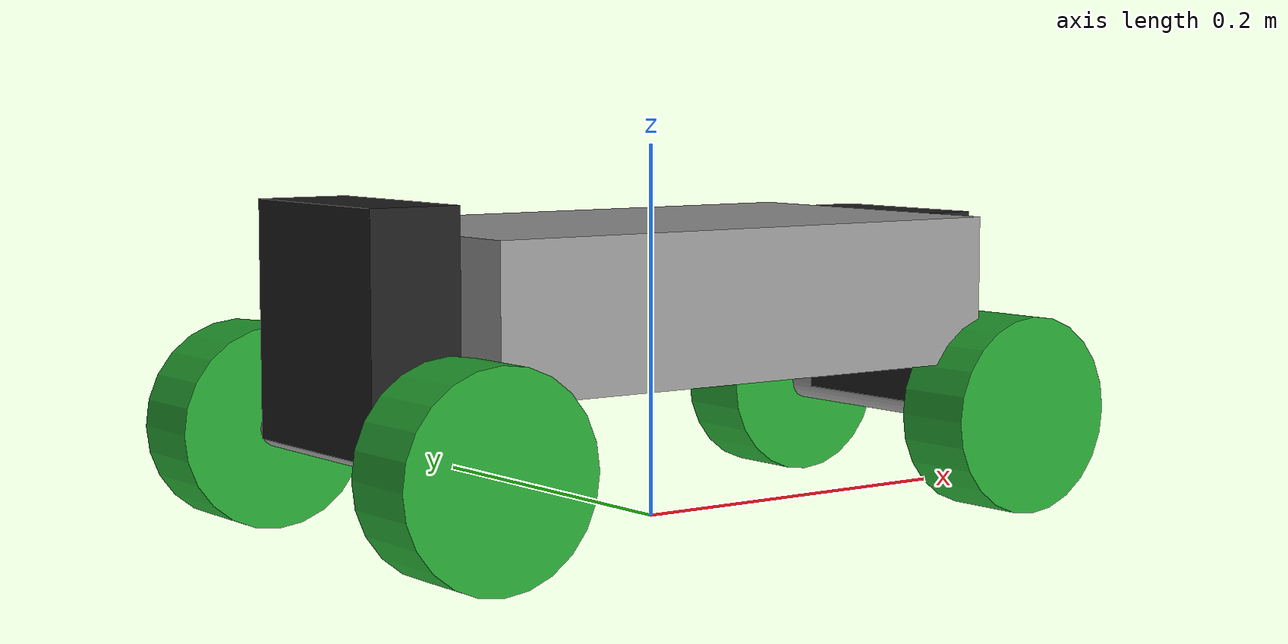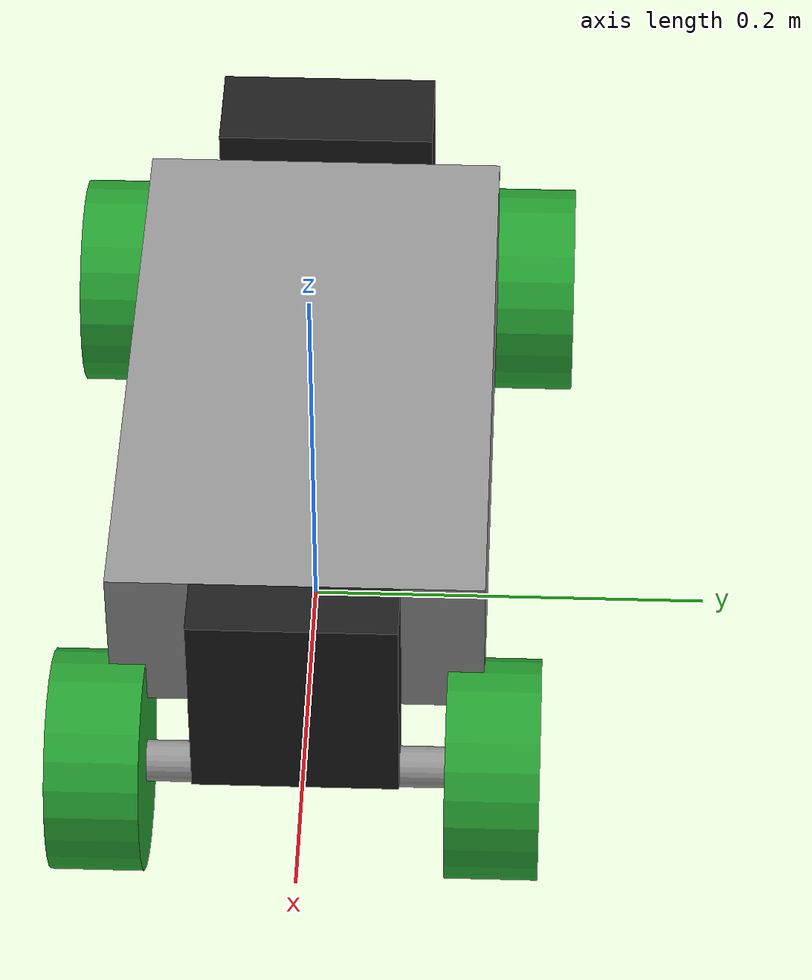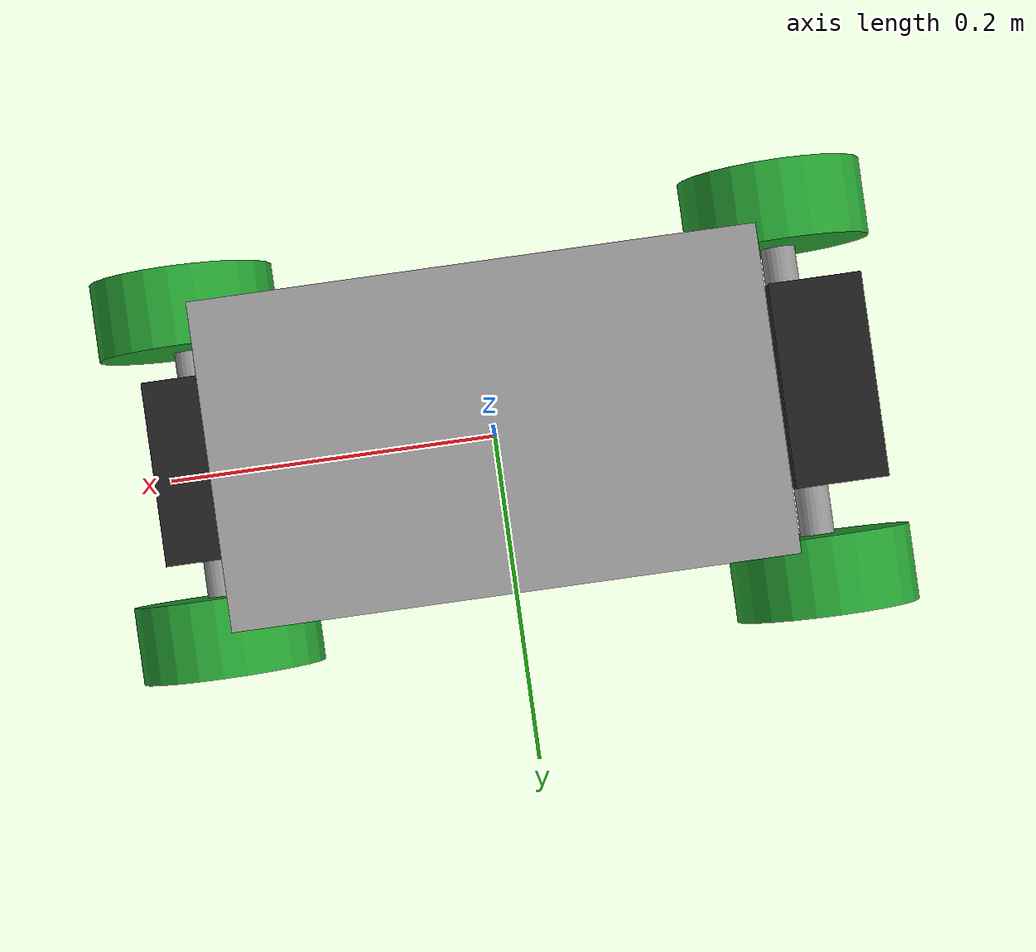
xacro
<?xml version="1.0" encoding="UTF-8"?>

<robot xmlns:xacro="http://www.ros.org/wiki/xacro">
    <!-- PARAMS -->
    <!-- Chassis dimensions -->
    <xacro:property name="chassis_length" value="0.31" />
    <xacro:property name="chassis_width" value="0.18" />
    <xacro:property name="chassis_height" value="0.07869" />
    <xacro:property name="chassis_mass" value="${7850.0 * chassis_length * chassis_width * chassis_height}" />
    <!-- Front suspension dimensions -->
    <xacro:property name="front_suspension_length" value="0.03" />
    <xacro:property name="front_suspension_width" value="0.1" />
    <xacro:property name="front_suspension_height" value="0.10669" />
    <xacro:property name="front_suspension_mass" value="${7850.0 * front_suspension_length * front_suspension_width * front_suspension_height}" />
    <!--Rear suspension dimensions -->
    <xacro:property name="rear_suspension_length" value="0.05" />
    <xacro:property name="rear_suspension_width" value="0.11" />
    <xacro:property name="rear_suspension_height" value="0.12169" />
    <xacro:property name="rear_suspension_mass" value="${7850.0 * rear_suspension_length * rear_suspension_width * rear_suspension_height}" />
    <!-- Wheel dimensions -->
    <xacro:property name="wheel_radius" value="0.0535" />
    <xacro:property name="wheel_width" value="0.045" />
    <xacro:property name="wheel_density" value="900.0" />
    <xacro:property name="wheel_mass" value="${wheel_density * pi * wheel_radius * wheel_radius * wheel_width}" />
    <xacro:property name="wheel_separation" value="0.28" />
    <xacro:property name="wheel_offset" value="${chassis_length / 2.0 - wheel_radius}" />
    <!-- Steering params -->
    <xacro:property name="max_steering_angle" value="0.5236" />
    <xacro:property name="counter_max_steering_angle" value="0.349066" />
    <xacro:property name="max_steering_angular_vel" value="1.570796" />
    <xacro:property name="max_steering_effort" value="1.0" />
    <xacro:property name="max_vel" value="4" />
    <xacro:property name="max_effort" value="10.0" />
    <xacro:property name="max_wheel_angular_vel" value="${max_vel / wheel_radius}" />
    <!-- Front axis -->
    <xacro:property name="front_wheel_axis_width" value="${wheel_separation - (2 * wheel_width)}" />
    <xacro:property name="front_wheel_axis_radius" value="0.01" />
    <!-- Rear axis -->
    <xacro:property name="rear_wheel_axis_width" value="0.17" />
    <xacro:property name="rear_wheel_axis_radius" value="0.01" />

    <!-- XACRO FUNCTIONS -->
    <xacro:macro name="wheel_link" params="prefix">
        <link name="${prefix}_wheel_link">
            <xacro:cylinder_inertia m="${wheel_mass}" r="${wheel_radius}" l="${wheel_width}" o_xyz="0.0 0.0 0.0" o_rpy="${pi/2} 0 0" />
            <visual>
                <origin xyz="0.0 0.0 0.0" rpy="${pi/2} 0 0" />
                <geometry>
                    <cylinder radius="${wheel_radius}" length="${wheel_width}" />
                </geometry>
                <material name="green"/>
            </visual>
            <collision>
                <origin xyz="0.0 0.0 0.0" rpy="${pi/2} 0 0" />
                <geometry>
                    <sphere radius="${wheel_radius}" />
                </geometry>
            </collision>
        </link>
    </xacro:macro>

    <xacro:macro name="steering_link" params="prefix">
        <link name="${prefix}_steering_link">
            <xacro:cylinder_inertia m="0.01" r="0.01" l="0.001" o_xyz="0.0 0.0 0.0" o_rpy="${pi/2} 0.0 0.0" />
            <visual>
                <origin xyz="0.0 0.0 0.0" rpy="${pi / 2.0} 0.0 0.0" />
                <geometry>
                    <cylinder radius="0.01" length="0.001" />
                </geometry>
                <material name="blue"/>
            </visual>
            <collision>
                <origin xyz="0.0 0.0 0.0" rpy="${pi/2} 0.0 0.0" />
                <geometry>
                    <cylinder radius="0.01" length="0.001" />
                </geometry>
            </collision>
        </link>
    </xacro:macro>

    <!-- LINKS -->
    <link name="base_footprint"></link>

    <link name="chassis_link">
        <xacro:box_inertia m="${chassis_mass}" l="${chassis_length}" w="${chassis_width}" h="${chassis_height}" o_xyz="0.0 0.0 ${chassis_height/2}" o_rpy="0.0 0.0 0.0" />
        <visual>
            <origin xyz="0.0 0.0 ${chassis_height/2}" rpy="0.0 0.0 0.0" />
            <geometry>
                <box size="${chassis_length} ${chassis_width} ${chassis_height}" />
            </geometry>
            <material name="grey"/>
        </visual>
        <collision>
            <origin xyz="0.0 0.0 ${chassis_height/2}" rpy="0.0 0.0 0.0" />
            <geometry>
                <box size="${chassis_length} ${chassis_width} ${chassis_height}" />
            </geometry>
        </collision>
    </link>

    <link name="front_suspension_link">
        <xacro:box_inertia m="${front_suspension_mass}" l="${front_suspension_length}" w="${front_suspension_width}" h="${front_suspension_height}" o_xyz="0.0 0.0 ${front_suspension_height/2}" o_rpy="0.0 0.0 0.0" />
        <visual>
            <origin xyz="0.0 0.0 ${front_suspension_height/2}" rpy="0.0 0.0 0.0" />
            <geometry>
                <box size="${front_suspension_length} ${front_suspension_width} ${front_suspension_height}" />
            </geometry>
            <material name="black"/>
        </visual>
        <collision>
            <origin xyz="0.0 0.0 ${front_suspension_height/2}" rpy="0.0 0.0 0.0" />
            <geometry>
                <box size="${front_suspension_length} ${front_suspension_width} ${front_suspension_height}" />
            </geometry>
        </collision>
    </link>

    <link name="rear_suspension_link">
        <xacro:box_inertia m="${rear_suspension_mass}" l="${rear_suspension_length}" w="${rear_suspension_width}" h="${rear_suspension_height}" o_xyz="0.0 0.0 ${rear_suspension_height/2}" o_rpy="0.0 0.0 0.0" />
        <visual>
            <origin xyz="0.0 0.0 ${rear_suspension_height/2}" rpy="0.0 0.0 0.0" />
            <geometry>
                <box size="${rear_suspension_length} ${rear_suspension_width} ${rear_suspension_height}" />
            </geometry>
            <material name="black"/>
        </visual>
        <collision>
            <origin xyz="0.0 0.0 ${rear_suspension_height/2}" rpy="0.0 0.0 0.0" />
            <geometry>
                <box size="${rear_suspension_length} ${rear_suspension_width} ${rear_suspension_height}" />
            </geometry>
        </collision>
    </link>

    <link name="front_axis_link">
        <xacro:cylinder_inertia m="0.01" r="${front_wheel_axis_radius}" l="${front_wheel_axis_width}" o_xyz="0.0 0.0 0.0" o_rpy="${pi/2} 0 0" />
        <visual>
            <origin xyz="0.0 0.0 0.0" rpy="${pi/2} 0 0" />
            <geometry>
                <cylinder radius="${front_wheel_axis_radius}" length="${front_wheel_axis_width}" />
            </geometry>
            <material name="grey_dark" />

        </visual>
        <collision>
            <origin xyz="0.0 0.0 0.0" rpy="${pi/2} 0 0" />
            <geometry>
                <cylinder radius="${front_wheel_axis_radius}" length="${front_wheel_axis_width}" />
            </geometry>
        </collision>
    </link>

    <link name="rear_axis_link">
        <xacro:cylinder_inertia m="0.01" r="${rear_wheel_axis_radius}" l="${rear_wheel_axis_width}" o_xyz="0.0 0.0 0.0" o_rpy="${pi/2} 0 0" />
        <visual>
            <origin xyz="0.0 0.0 0.0" rpy="${pi/2} 0 0" />
            <geometry>
                <cylinder radius="${rear_wheel_axis_radius}" length="${rear_wheel_axis_width}" />
            </geometry>
            <material name="grey_dark" />
        </visual>
        <collision>
            <origin xyz="0.0 0.0 0.0" rpy="${pi/2} 0 0" />
            <geometry>
                <cylinder radius="${rear_wheel_axis_radius}" length="${rear_wheel_axis_width}" />
            </geometry>
        </collision>
    </link>

    <xacro:wheel_link prefix="front_left"/>
    <xacro:wheel_link prefix="front_right"/>
    <xacro:wheel_link prefix="rear_left"/>
    <xacro:wheel_link prefix="rear_right"/>
    <xacro:steering_link prefix="front_left"/>
    <xacro:steering_link prefix="front_right"/>

    <!-- JOINTS -->
    <joint name="footprint_to_chassis_joint" type="fixed">
        <parent link="base_footprint"/>
        <child link="chassis_link"/>
        <origin xyz="0.0 0.0 ${wheel_radius + 0.028}" rpy="0.0 0.0 0.0"/>
        <axis xyz="0.0 1.0 0.0"/>
    </joint>

    <joint name="chassis_to_front_suspension_joint" type="fixed">
        <parent link="chassis_link" />
        <child link="front_suspension_link" />
        <origin xyz="${(chassis_length + front_suspension_length)/2} 0 ${chassis_height - front_suspension_height}" rpy="0.0 0.0 0.0" />
        <axis xyz="0.0 1.0 0.0" />
    </joint>

    <joint name="chassis_to_rear_suspension_joint" type="fixed">
        <parent link="chassis_link" />
        <child link="rear_suspension_link" />
        <origin
            xyz="${-(chassis_length + rear_suspension_length)/2} 0 ${chassis_height - rear_suspension_height + 0.015}"
            rpy="0.0 0.0 0.0" />
        <axis xyz="0 1 0" />
    </joint>

    <joint name="front_suspension_axis_joint" type="fixed">
        <parent link="front_suspension_link" />
        <child link="front_axis_link" />
        <origin xyz="0.0 0.0 0.0" rpy="0.0 0.0 0.0" />
        <axis xyz="0 1 0" />
    </joint>

    <joint name="rear_suspension_axis_joint" type="fixed">
        <parent link="rear_suspension_link" />
        <child link="rear_axis_link" />
        <origin xyz="0.0 0.0 0.0" rpy="0.0 0.0 0.0" />
        <axis xyz="0 1 0" />
    </joint>

    <joint name="rear_left_wheel_joint" type="continuous">
        <parent link="rear_axis_link" />
        <child link="rear_left_wheel_link" />
        <origin xyz="0 ${(rear_wheel_axis_width + wheel_width)/2} 0" rpy="0 0 0" />
        <axis xyz="0 1 0" />
        <limit effort="${max_effort}" velocity="${max_wheel_angular_vel}" />
        <dynamics damping="0.1" friction="0.1"/>
    </joint>

    <joint name="rear_right_wheel_joint" type="continuous">
        <parent link="rear_axis_link" />
        <child link="rear_right_wheel_link" />
        <origin xyz="0 ${-(rear_wheel_axis_width + wheel_width)/2} 0" rpy="0 0 0" />
        <axis xyz="0 1 0" />
        <limit effort="${max_effort}" velocity="${max_wheel_angular_vel}" />
        <dynamics damping="0.1" friction="0.1"/>
    </joint>

    <joint name="front_right_steering_joint" type="revolute">
        <parent link="front_axis_link" />
        <child link="front_right_steering_link" />
        <origin xyz="0 ${-(front_wheel_axis_width/2)} 0" rpy="0 0 0" />
        <axis xyz="0 0 1" />
        <limit lower="${-max_steering_angle}" upper="${counter_max_steering_angle}" effort="${max_steering_effort}" velocity="${max_steering_angular_vel}" />
        <dynamics damping="0.1" friction="0.1"/>
    </joint>

    <joint name="front_right_wheel_joint" type="continuous">
        <parent link="front_right_steering_link" />
        <child link="front_right_wheel_link" />
        <origin xyz="0 0 0" rpy="0 0 0" />
        <axis xyz="0 1 0" />
        <limit effort="${max_effort}" velocity="${max_wheel_angular_vel}" />
        <dynamics damping="0.1" friction="0.1"/>
    </joint>

    <joint name="front_left_steering_joint" type="revolute">
        <parent link="front_axis_link" />
        <child link="front_left_steering_link" />
        <origin xyz="0 ${(front_wheel_axis_width/2)} 0" rpy="0 0 0" />
        <axis xyz="0 0 1" />
        <limit lower="${-counter_max_steering_angle}" upper="${max_steering_angle}" effort="${max_steering_effort}" velocity="${max_steering_angular_vel}" />
        <dynamics damping="0.1" friction="0.1"/>
    </joint>

    <joint name="front_left_wheel_joint" type="continuous">
        <parent link="front_left_steering_link" />
        <child link="front_left_wheel_link" />
        <origin xyz="0 0 0" rpy="0 0 0" />
        <axis xyz="0 1 0" />
        <limit effort="${max_effort}" velocity="${max_wheel_angular_vel}" />
        <dynamics damping="0.1" friction="0.1"/>
    </joint>

</robot>
